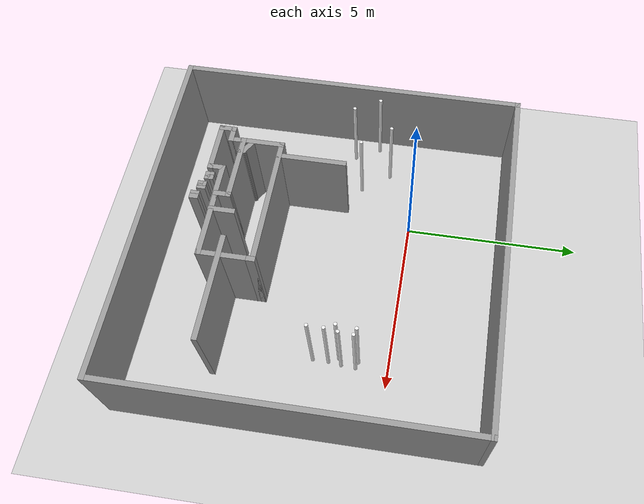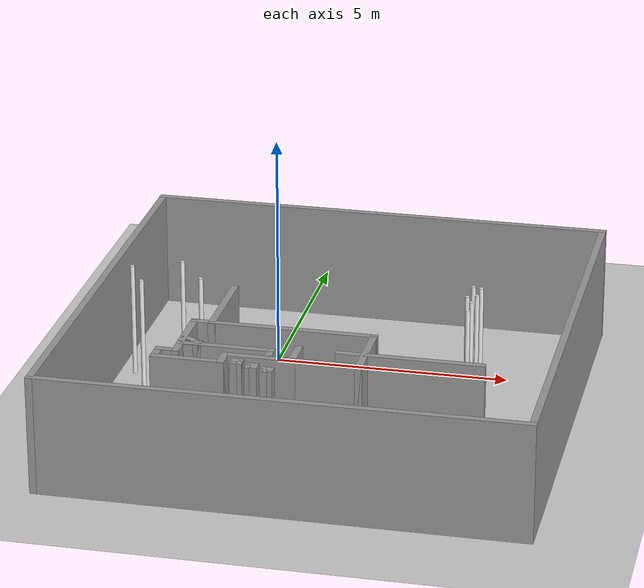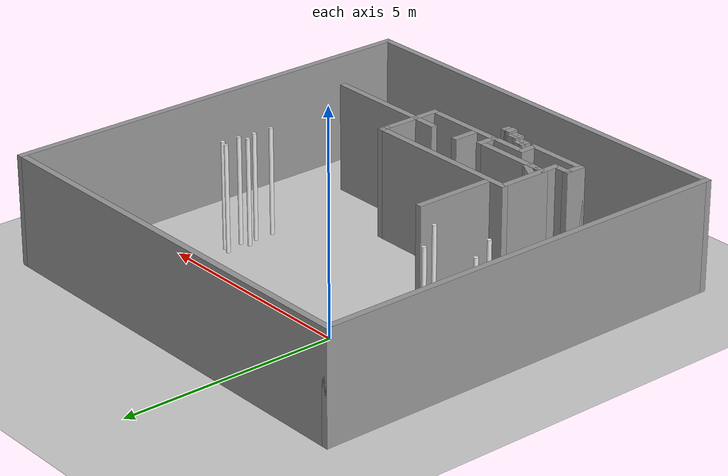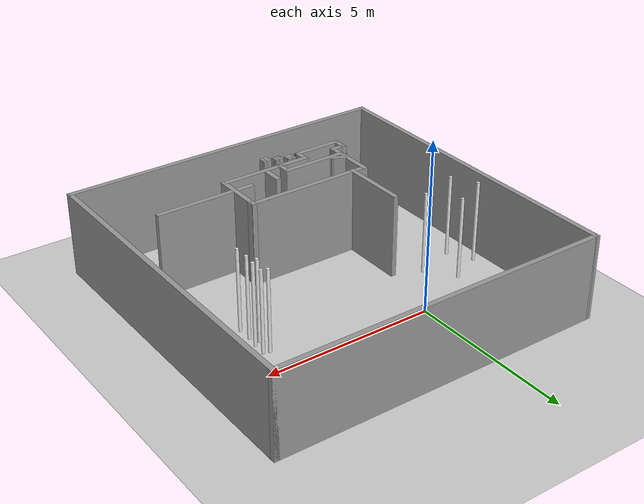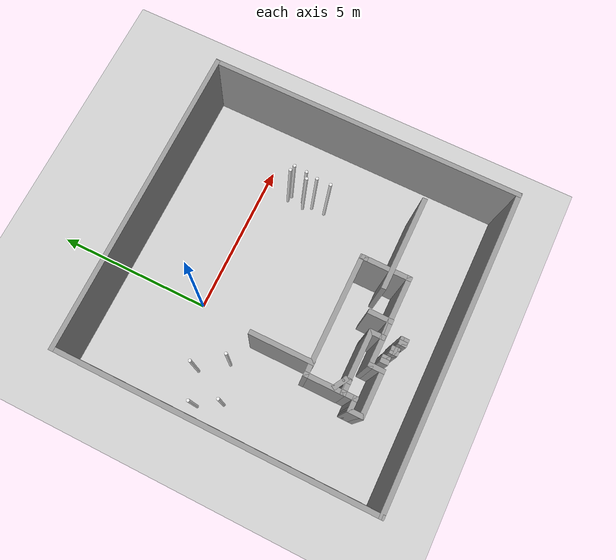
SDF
<sdf version="1.7">
 <world name="default">
  <model name="ground_plane">
   <static>1</static>
   <link name="link">
    <collision name="collision">
     <geometry><plane><normal>0 0 1</normal><size>100 100</size></plane></geometry>
     <surface><friction><ode><mu>100</mu><mu2>50</mu2></ode></friction></surface>
    </collision>
    <visual name="visual">
     <cast_shadows>0</cast_shadows>
     <geometry><plane><normal>0 0 1</normal><size>100 100</size></plane></geometry>
     <material>
      <script><uri>file://media/materials/scripts/gazebo.material</uri><name>Gazebo/Grey</name></script>
     </material>
    </visual>
   </link>
  </model>
  <model name="10mx10m">
   <pose>4.18438 -2.20916 0 0 -0 0</pose>
   <link name="Wall_0">
    <collision name="Wall_0_Collision">
     <geometry><box><size>10 0.15 2.5</size></box></geometry>
     <pose>0 0 1.25 0 -0 0</pose>
    </collision>
    <visual name="Wall_0_Visual">
     <pose>0 0 1.25 0 -0 0</pose>
     <geometry><box><size>10 0.15 2.5</size></box></geometry>
     <material>
      <script><uri>file://media/materials/scripts/gazebo.material</uri><name>Gazebo/Grey</name></script>
      <ambient>1 1 1 1</ambient>
     </material>
     <meta><layer>0</layer></meta>
    </visual>
    <pose>2.4125 -0 0 0 -0 1.5708</pose>
   </link>
   <link name="Wall_2">
    <collision name="Wall_2_Collision">
     <geometry><box><size>10 0.15 2.5</size></box></geometry>
     <pose>0 0 1.25 0 -0 0</pose>
    </collision>
    <visual name="Wall_2_Visual">
     <pose>0 0 1.25 0 -0 0</pose>
     <geometry><box><size>10 0.15 2.5</size></box></geometry>
     <material>
      <script><uri>file://media/materials/scripts/gazebo.material</uri><name>Gazebo/Grey</name></script>
      <ambient>1 1 1 1</ambient>
     </material>
     <meta><layer>0</layer></meta>
    </visual>
    <pose>-2.5125 -4.925 0 0 -0 3.14159</pose>
   </link>
   <link name="Wall_3">
    <collision name="Wall_3_Collision">
     <geometry><box><size>10 0.15 2.5</size></box></geometry>
     <pose>0 0 1.25 0 -0 0</pose>
    </collision>
    <visual name="Wall_3_Visual">
     <pose>0 0 1.25 0 -0 0</pose>
     <geometry><box><size>10 0.15 2.5</size></box></geometry>
     <material>
      <script><uri>file://media/materials/scripts/gazebo.material</uri><name>Gazebo/Grey</name></script>
      <ambient>1 1 1 1</ambient>
     </material>
     <meta><layer>0</layer></meta>
    </visual>
    <pose>-7.4375 -0 0 0 -0 1.5708</pose>
   </link>
   <link name="Wall_4">
    <collision name="Wall_4_Collision">
     <geometry><box><size>10 0.15 2.5</size></box></geometry>
     <pose>0 0 1.25 0 -0 0</pose>
    </collision>
    <visual name="Wall_4_Visual">
     <pose>0 0 1.25 0 -0 0</pose>
     <geometry><box><size>10 0.15 2.5</size></box></geometry>
     <material>
      <script><uri>file://media/materials/scripts/gazebo.material</uri><name>Gazebo/Grey</name></script>
      <ambient>1 1 1 1</ambient>
     </material>
     <meta><layer>0</layer></meta>
    </visual>
    <pose>-2.5125 4.925 0 0 -0 0</pose>
   </link>
   <static>1</static>
  </model>
  <model name="2m_wall">
   <pose>2.61075 -2.4429 0 0 -0 0</pose>
   <link name="Wall_37">
    <collision name="Wall_37_Collision">
     <geometry><box><size>2 0.15 2.5</size></box></geometry>
     <pose>0 0 1.25 0 -0 0</pose>
    </collision>
    <visual name="Wall_37_Visual">
     <pose>0 0 1.25 0 -0 0</pose>
     <geometry><box><size>2 0.15 2.5</size></box></geometry>
     <material>
      <script><uri>file://media/materials/scripts/gazebo.material</uri><name>Gazebo/Grey</name></script>
      <ambient>1 1 1 1</ambient>
     </material>
     <meta><layer>0</layer></meta>
    </visual>
    <pose>-3.0625 -0.4625 0 0 -0 -1.5708</pose>
   </link>
   <static>1</static>
  </model>
  <model name="center_wall005">
   <pose>2.40467 -3.64658 0 0 -0 0</pose>
   <link name="Wall_14">
    <collision name="Wall_14_Collision">
     <geometry><box><size>1.25 0.15 2.5</size></box></geometry>
     <pose>0 0 1.25 0 -0 0</pose>
    </collision>
    <visual name="Wall_14_Visual">
     <pose>0 0 1.25 0 -0 0</pose>
     <geometry><box><size>1.25 0.15 2.5</size></box></geometry>
     <material>
      <script><uri>file://media/materials/scripts/gazebo.material</uri><name>Gazebo/Grey</name></script>
      <ambient>1 1 1 1</ambient>
     </material>
     <meta><layer>0</layer></meta>
    </visual>
    <pose>-3.2275 -0.7225 0 0 -0 -1.5708</pose>
   </link>
   <link name="Wall_15">
    <collision name="Wall_15_Collision">
     <geometry><box><size>2 0.15 2.5</size></box></geometry>
     <pose>0 0 1.25 0 -0 0</pose>
    </collision>
    <visual name="Wall_15_Visual">
     <pose>0 0 1.25 0 -0 0</pose>
     <geometry><box><size>2 0.15 2.5</size></box></geometry>
     <material>
      <script><uri>file://media/materials/scripts/gazebo.material</uri><name>Gazebo/Grey</name></script>
      <ambient>1 1 1 1</ambient>
     </material>
     <meta><layer>0</layer></meta>
    </visual>
    <pose>-2.3025 -1.2725 0 0 -0 0</pose>
   </link>
   <link name="Wall_16">
    <collision name="Wall_16_Collision">
     <geometry><box><size>0.5 0.15 2.5</size></box></geometry>
     <pose>0 0 1.25 0 -0 0</pose>
    </collision>
    <visual name="Wall_16_Visual">
     <pose>0 0 1.25 0 -0 0</pose>
     <geometry><box><size>0.5 0.15 2.5</size></box></geometry>
     <material>
      <script><uri>file://media/materials/scripts/gazebo.material</uri><name>Gazebo/Grey</name></script>
      <ambient>1 1 1 1</ambient>
     </material>
     <meta><layer>0</layer></meta>
    </visual>
    <pose>-1.3775 -1.4475 0 0 -0 -1.5708</pose>
   </link>
   <link name="Wall_17">
    <collision name="Wall_17_Collision">
     <geometry><box><size>2 0.15 2.5</size></box></geometry>
     <pose>0 0 1.25 0 -0 0</pose>
    </collision>
    <visual name="Wall_17_Visual">
     <pose>0 0 1.25 0 -0 0</pose>
     <geometry><box><size>2 0.15 2.5</size></box></geometry>
     <material>
      <script><uri>file://media/materials/scripts/gazebo.material</uri><name>Gazebo/Grey</name></script>
      <ambient>1 1 1 1</ambient>
     </material>
     <meta><layer>0</layer></meta>
    </visual>
    <pose>-0.4525 -1.6225 0 0 -0 0</pose>
   </link>
   <link name="Wall_18">
    <collision name="Wall_18_Collision">
     <geometry><box><size>1.5 0.15 2.5</size></box></geometry>
     <pose>0 0 1.25 0 -0 0</pose>
    </collision>
    <visual name="Wall_18_Visual">
     <pose>0 0 1.25 0 -0 0</pose>
     <geometry><box><size>1.5 0.15 2.5</size></box></geometry>
     <material>
      <script><uri>file://media/materials/scripts/gazebo.material</uri><name>Gazebo/Grey</name></script>
      <ambient>1 1 1 1</ambient>
     </material>
     <meta><layer>0</layer></meta>
    </visual>
    <pose>0.4725 -0.9475 0 0 -0 1.5708</pose>
   </link>
   <link name="Wall_19">
    <collision name="Wall_19_Collision">
     <geometry><box><size>0.25 0.15 2.5</size></box></geometry>
     <pose>0 0 1.25 0 -0 0</pose>
    </collision>
    <visual name="Wall_19_Visual">
     <pose>0 0 1.25 0 -0 0</pose>
     <geometry><box><size>0.25 0.15 2.5</size></box></geometry>
     <material>
      <script><uri>file://media/materials/scripts/gazebo.material</uri><name>Gazebo/Grey</name></script>
      <ambient>1 1 1 1</ambient>
     </material>
     <meta><layer>0</layer></meta>
    </visual>
    <pose>0.4725 -0.2225 0 0 -0 1.5708</pose>
   </link>
   <link name="Wall_20">
    <collision name="Wall_20_Collision">
     <geometry><box><size>3.85 0.15 2.5</size></box></geometry>
     <pose>0 0 1.25 0 -0 0</pose>
    </collision>
    <visual name="Wall_20_Visual">
     <pose>0 0 1.25 0 -0 0</pose>
     <geometry><box><size>3.85 0.15 2.5</size></box></geometry>
     <material>
      <script><uri>file://media/materials/scripts/gazebo.material</uri><name>Gazebo/Grey</name></script>
      <ambient>1 1 1 1</ambient>
     </material>
     <meta><layer>0</layer></meta>
    </visual>
    <pose>-1.3775 -0.1725 0 0 -0 3.14159</pose>
   </link>
   <static>1</static>
  </model>
  <model name="3m_wall_clone_0">
   <pose>4.21832 -7.32224 0 0 0 -1.57</pose>
   <link name="Wall_33">
    <collision name="Wall_33_Collision">
     <geometry><box><size>3 0.15 2.5</size></box></geometry>
     <pose>0 0 1.25 0 -0 0</pose>
    </collision>
    <visual name="Wall_33_Visual">
     <pose>0 0 1.25 0 -0 0</pose>
     <geometry><box><size>3 0.15 2.5</size></box></geometry>
     <material>
      <script><uri>file://media/materials/scripts/gazebo.material</uri><name>Gazebo/Grey</name></script>
      <ambient>1 1 1 1</ambient>
     </material>
     <meta><layer>0</layer></meta>
    </visual>
    <pose>-2.5875 -0.4275 0 0 -0 -1.5708</pose>
   </link>
   <static>1</static>
  </model>
  <model name="under_left_wall001">
   <pose>0.5386 -4.0873 0 0 -0 0</pose>
   <link name="Wall_10">
    <collision name="Wall_10_Collision">
     <geometry><box><size>0.5 0.15 2.5</size></box></geometry>
     <pose>0 0 1.25 0 -0 0</pose>
    </collision>
    <visual name="Wall_10_Visual">
     <pose>0 0 1.25 0 -0 0</pose>
     <geometry><box><size>0.5 0.15 2.5</size></box></geometry>
     <material>
      <script><uri>file://media/materials/scripts/gazebo.material</uri><name>Gazebo/Grey</name></script>
      <ambient>1 1 1 1</ambient>
     </material>
     <meta><layer>0</layer></meta>
    </visual>
    <pose>-1.3575 -1.0225 0 0 -0 1.5708</pose>
   </link>
   <link name="Wall_11">
    <collision name="Wall_11_Collision">
     <geometry><box><size>0.5 0.15 2.5</size></box></geometry>
     <pose>0 0 1.25 0 -0 0</pose>
    </collision>
    <visual name="Wall_11_Visual">
     <pose>0 0 1.25 0 -0 0</pose>
     <geometry><box><size>0.5 0.15 2.5</size></box></geometry>
     <material>
      <script><uri>file://media/materials/scripts/gazebo.material</uri><name>Gazebo/Grey</name></script>
      <ambient>1 1 1 1</ambient>
     </material>
     <meta><layer>0</layer></meta>
    </visual>
    <pose>-1.1825 -0.8475 0 0 -0 0</pose>
   </link>
   <link name="Wall_12">
    <collision name="Wall_12_Collision">
     <geometry><box><size>0.25 0.15 2.5</size></box></geometry>
     <pose>0 0 1.25 0 -0 0</pose>
    </collision>
    <visual name="Wall_12_Visual">
     <pose>0 0 1.25 0 -0 0</pose>
     <geometry><box><size>0.25 0.15 2.5</size></box></geometry>
     <material>
      <script><uri>file://media/materials/scripts/gazebo.material</uri><name>Gazebo/Grey</name></script>
      <ambient>1 1 1 1</ambient>
     </material>
     <meta><layer>0</layer></meta>
    </visual>
    <pose>-1.0075 -0.7975 0 0 -0 1.5708</pose>
   </link>
   <link name="Wall_13">
    <collision name="Wall_13_Collision">
     <geometry><box><size>0.5 0.15 2.5</size></box></geometry>
     <pose>0 0 1.25 0 -0 0</pose>
    </collision>
    <visual name="Wall_13_Visual">
     <pose>0 0 1.25 0 -0 0</pose>
     <geometry><box><size>0.5 0.15 2.5</size></box></geometry>
     <material>
      <script><uri>file://media/materials/scripts/gazebo.material</uri><name>Gazebo/Grey</name></script>
      <ambient>1 1 1 1</ambient>
     </material>
     <meta><layer>0</layer></meta>
    </visual>
    <pose>-1.15905 -0.66 0 0 -0 2.61799</pose>
   </link>
   <link name="Wall_16">
    <collision name="Wall_16_Collision">
     <geometry><box><size>0.75 0.15 2.5</size></box></geometry>
     <pose>0 0 1.25 0 -0 0</pose>
    </collision>
    <visual name="Wall_16_Visual">
     <pose>0 0 1.25 0 -0 0</pose>
     <geometry><box><size>0.75 0.15 2.5</size></box></geometry>
     <material>
      <script><uri>file://media/materials/scripts/gazebo.material</uri><name>Gazebo/Grey</name></script>
      <ambient>1 1 1 1</ambient>
     </material>
     <meta><layer>0</layer></meta>
    </visual>
    <pose>0.9925 -0.8975 0 0 -0 1.5708</pose>
   </link>
   <link name="Wall_5">
    <collision name="Wall_5_Collision">
     <geometry><box><size>1.5 0.15 2.5</size></box></geometry>
     <pose>0 0 1.25 0 -0 0</pose>
    </collision>
    <visual name="Wall_5_Visual">
     <pose>0 0 1.25 0 -0 0</pose>
     <geometry><box><size>1.5 0.15 2.5</size></box></geometry>
     <material>
      <script><uri>file://media/materials/scripts/gazebo.material</uri><name>Gazebo/Grey</name></script>
      <ambient>1 1 1 1</ambient>
     </material>
     <meta><layer>0</layer></meta>
    </visual>
    <pose>0.3175 -1.1975 0 0 -0 3.14159</pose>
   </link>
   <link name="Wall_6">
    <collision name="Wall_6_Collision">
     <geometry><box><size>0.5 0.15 2.5</size></box></geometry>
     <pose>0 0 1.25 0 -0 0</pose>
    </collision>
    <visual name="Wall_6_Visual">
     <pose>0 0 1.25 0 -0 0</pose>
     <geometry><box><size>0.5 0.15 2.5</size></box></geometry>
     <material>
      <script><uri>file://media/materials/scripts/gazebo.material</uri><name>Gazebo/Grey</name></script>
      <ambient>1 1 1 1</ambient>
     </material>
     <meta><layer>0</layer></meta>
    </visual>
    <pose>-0.3575 -1.3725 0 0 -0 -1.5708</pose>
   </link>
   <link name="Wall_7">
    <collision name="Wall_7_Collision">
     <geometry><box><size>1.5 0.15 2.5</size></box></geometry>
     <pose>0 0 1.25 0 -0 0</pose>
    </collision>
    <visual name="Wall_7_Visual">
     <pose>0 0 1.25 0 -0 0</pose>
     <geometry><box><size>1.5 0.15 2.5</size></box></geometry>
     <material>
      <script><uri>file://media/materials/scripts/gazebo.material</uri><name>Gazebo/Grey</name></script>
      <ambient>1 1 1 1</ambient>
     </material>
     <meta><layer>0</layer></meta>
    </visual>
    <pose>-1.0325 -1.5475 0 0 -0 3.14159</pose>
   </link>
   <link name="Wall_8">
    <collision name="Wall_8_Collision">
     <geometry><box><size>0.5 0.15 2.5</size></box></geometry>
     <pose>0 0 1.25 0 -0 0</pose>
    </collision>
    <visual name="Wall_8_Visual">
     <pose>0 0 1.25 0 -0 0</pose>
     <geometry><box><size>0.5 0.15 2.5</size></box></geometry>
     <material>
      <script><uri>file://media/materials/scripts/gazebo.material</uri><name>Gazebo/Grey</name></script>
      <ambient>1 1 1 1</ambient>
     </material>
     <meta><layer>0</layer></meta>
    </visual>
    <pose>-1.7075 -1.3725 0 0 -0 1.5708</pose>
   </link>
   <link name="Wall_9">
    <collision name="Wall_9_Collision">
     <geometry><box><size>0.5 0.15 2.5</size></box></geometry>
     <pose>0 0 1.25 0 -0 0</pose>
    </collision>
    <visual name="Wall_9_Visual">
     <pose>0 0 1.25 0 -0 0</pose>
     <geometry><box><size>0.5 0.15 2.5</size></box></geometry>
     <material>
      <script><uri>file://media/materials/scripts/gazebo.material</uri><name>Gazebo/Grey</name></script>
      <ambient>1 1 1 1</ambient>
     </material>
     <meta><layer>0</layer></meta>
    </visual>
    <pose>-1.5325 -1.1975 0 0 -0 0</pose>
   </link>
   <static>1</static>
  </model>
  <model name="0.25m_cube">
   <pose>2.21963 -3.88995 0 0 -0 0</pose>
   <link name="Wall_18">
    <collision name="Wall_18_Collision">
     <geometry><box><size>0.25 0.15 2.5</size></box></geometry>
     <pose>0 0 1.25 0 -0 0</pose>
    </collision>
    <visual name="Wall_18_Visual">
     <pose>0 0 1.25 0 -0 0</pose>
     <geometry><box><size>0.25 0.15 2.5</size></box></geometry>
     <material>
      <script><uri>file://media/materials/scripts/gazebo.material</uri><name>Gazebo/Grey</name></script>
      <ambient>1 1 1 1</ambient>
     </material>
     <meta><layer>0</layer></meta>
    </visual>
    <pose>-1.77505 -1.68895 0 0 -0 -1.5708</pose>
   </link>
   <link name="Wall_19">
    <collision name="Wall_19_Collision">
     <geometry><box><size>0.25 0.15 2.5</size></box></geometry>
     <pose>0 0 1.25 0 -0 0</pose>
    </collision>
    <visual name="Wall_19_Visual">
     <pose>0 0 1.25 0 -0 0</pose>
     <geometry><box><size>0.25 0.15 2.5</size></box></geometry>
     <material>
      <script><uri>file://media/materials/scripts/gazebo.material</uri><name>Gazebo/Grey</name></script>
      <ambient>1 1 1 1</ambient>
     </material>
     <meta><layer>0</layer></meta>
    </visual>
    <pose>-1.72505 -1.73894 0 0 -0 0</pose>
   </link>
   <link name="Wall_20">
    <collision name="Wall_20_Collision">
     <geometry><box><size>0.25 0.15 2.5</size></box></geometry>
     <pose>0 0 1.25 0 -0 0</pose>
    </collision>
    <visual name="Wall_20_Visual">
     <pose>0 0 1.25 0 -0 0</pose>
     <geometry><box><size>0.25 0.15 2.5</size></box></geometry>
     <material>
      <script><uri>file://media/materials/scripts/gazebo.material</uri><name>Gazebo/Grey</name></script>
      <ambient>1 1 1 1</ambient>
     </material>
     <meta><layer>0</layer></meta>
    </visual>
    <pose>-1.67505 -1.68895 0 0 -0 1.5708</pose>
   </link>
   <static>1</static>
  </model>
  <model name="0.25m_cube_clone">
   <pose>2.55207 -4.02545 0 0 -0 0</pose>
   <link name="Wall_18">
    <collision name="Wall_18_Collision">
     <geometry><box><size>0.25 0.15 2.5</size></box></geometry>
     <pose>0 0 1.25 0 -0 0</pose>
    </collision>
    <visual name="Wall_18_Visual">
     <pose>0 0 1.25 0 -0 0</pose>
     <geometry><box><size>0.25 0.15 2.5</size></box></geometry>
     <material>
      <script><uri>file://media/materials/scripts/gazebo.material</uri><name>Gazebo/Grey</name></script>
      <ambient>1 1 1 1</ambient>
     </material>
     <meta><layer>0</layer></meta>
    </visual>
    <pose>-1.77505 -1.68895 0 0 -0 -1.5708</pose>
   </link>
   <link name="Wall_19">
    <collision name="Wall_19_Collision">
     <geometry><box><size>0.25 0.15 2.5</size></box></geometry>
     <pose>0 0 1.25 0 -0 0</pose>
    </collision>
    <visual name="Wall_19_Visual">
     <pose>0 0 1.25 0 -0 0</pose>
     <geometry><box><size>0.25 0.15 2.5</size></box></geometry>
     <material>
      <script><uri>file://media/materials/scripts/gazebo.material</uri><name>Gazebo/Grey</name></script>
      <ambient>1 1 1 1</ambient>
     </material>
     <meta><layer>0</layer></meta>
    </visual>
    <pose>-1.72505 -1.73894 0 0 -0 0</pose>
   </link>
   <link name="Wall_20">
    <collision name="Wall_20_Collision">
     <geometry><box><size>0.25 0.15 2.5</size></box></geometry>
     <pose>0 0 1.25 0 -0 0</pose>
    </collision>
    <visual name="Wall_20_Visual">
     <pose>0 0 1.25 0 -0 0</pose>
     <geometry><box><size>0.25 0.15 2.5</size></box></geometry>
     <material>
      <script><uri>file://media/materials/scripts/gazebo.material</uri><name>Gazebo/Grey</name></script>
      <ambient>1 1 1 1</ambient>
     </material>
     <meta><layer>0</layer></meta>
    </visual>
    <pose>-1.67505 -1.68895 0 0 -0 1.5708</pose>
   </link>
   <static>1</static>
  </model>
  <model name="0.25m_cube_clone_0">
   <pose>2.88559 -4.14481 0 0 -0 0</pose>
   <link name="Wall_18">
    <collision name="Wall_18_Collision">
     <geometry><box><size>0.25 0.15 2.5</size></box></geometry>
     <pose>0 0 1.25 0 -0 0</pose>
    </collision>
    <visual name="Wall_18_Visual">
     <pose>0 0 1.25 0 -0 0</pose>
     <geometry><box><size>0.25 0.15 2.5</size></box></geometry>
     <material>
      <script><uri>file://media/materials/scripts/gazebo.material</uri><name>Gazebo/Grey</name></script>
      <ambient>1 1 1 1</ambient>
     </material>
     <meta><layer>0</layer></meta>
    </visual>
    <pose>-1.77505 -1.68895 0 0 -0 -1.5708</pose>
   </link>
   <link name="Wall_19">
    <collision name="Wall_19_Collision">
     <geometry><box><size>0.25 0.15 2.5</size></box></geometry>
     <pose>0 0 1.25 0 -0 0</pose>
    </collision>
    <visual name="Wall_19_Visual">
     <pose>0 0 1.25 0 -0 0</pose>
     <geometry><box><size>0.25 0.15 2.5</size></box></geometry>
     <material>
      <script><uri>file://media/materials/scripts/gazebo.material</uri><name>Gazebo/Grey</name></script>
      <ambient>1 1 1 1</ambient>
     </material>
     <meta><layer>0</layer></meta>
    </visual>
    <pose>-1.72505 -1.73894 0 0 -0 0</pose>
   </link>
   <link name="Wall_20">
    <collision name="Wall_20_Collision">
     <geometry><box><size>0.25 0.15 2.5</size></box></geometry>
     <pose>0 0 1.25 0 -0 0</pose>
    </collision>
    <visual name="Wall_20_Visual">
     <pose>0 0 1.25 0 -0 0</pose>
     <geometry><box><size>0.25 0.15 2.5</size></box></geometry>
     <material>
      <script><uri>file://media/materials/scripts/gazebo.material</uri><name>Gazebo/Grey</name></script>
      <ambient>1 1 1 1</ambient>
     </material>
     <meta><layer>0</layer></meta>
    </visual>
    <pose>-1.67505 -1.68895 0 0 -0 1.5708</pose>
   </link>
   <static>1</static>
  </model>
  <model name="White_pole_clone_clone_7">
   <link name="link_0">
    <inertial>
     <mass>1</mass>
     <inertia><ixx>0.145833</ixx><ixy>0</ixy><ixz>0</ixz><iyy>0.145833</iyy><iyz>0</iyz><izz>0.125</izz></inertia>
    </inertial>
    <visual name="visual">
     <geometry><cylinder><radius>0.0478039</radius><length>2.47001</length></cylinder></geometry>
     <material>
      <lighting>1</lighting>
      <script><uri>file://media/materials/scripts/gazebo.material</uri><name>Gazebo/White</name></script>
      <shader type="vertex"><normal_map>__default__</normal_map></shader>
      <ambient>1 1 1 1</ambient>
      <diffuse>1 1 1 1</diffuse>
      <specular>0 0 0 1</specular>
      <emissive>0 0 0 1</emissive>
     </material>
    </visual>
    <collision name="collision">
     <geometry><cylinder><radius>0.047804</radius><length>2.47001</length></cylinder></geometry>
     <surface>
      <friction>
       <ode><mu>1</mu><mu2>1</mu2><fdir1>0 0 0</fdir1><slip1>0</slip1><slip2>0</slip2></ode>
       <torsional>
        <coefficient>1</coefficient>
        <patch_radius>0</patch_radius>
        <surface_radius>0</surface_radius>
        <use_patch_radius>1</use_patch_radius>
        <ode><slip>0</slip></ode>
       </torsional>
      </friction>
      <bounce><restitution_coefficient>0</restitution_coefficient><threshold>1e+06</threshold></bounce>
      <contact>
       <collide_without_contact>0</collide_without_contact>
       <collide_without_contact_bitmask>1</collide_without_contact_bitmask>
       <collide_bitmask>1</collide_bitmask>
       <ode>
        <soft_cfm>0</soft_cfm>
        <soft_erp>0.2</soft_erp>
        <kp>1e+13</kp>
        <kd>1</kd>
        <max_vel>0.01</max_vel>
        <min_depth>0</min_depth>
       </ode>
       <bullet>
        <split_impulse>1</split_impulse>
        <split_impulse_penetration_threshold>-0.01</split_impulse_penetration_threshold>
        <soft_cfm>0</soft_cfm>
        <soft_erp>0.2</soft_erp>
        <kp>1e+13</kp>
        <kd>1</kd>
       </bullet>
      </contact>
     </surface>
    </collision>
   </link>
   <static>1</static>
   <pose>4.47457 -2.09463 1.235 0 -2e-06 -5e-06</pose>
  </model>
  <model name="White_pole_clone_clone_9">
   <link name="link_0">
    <inertial>
     <mass>1</mass>
     <inertia><ixx>0.145833</ixx><ixy>0</ixy><ixz>0</ixz><iyy>0.145833</iyy><iyz>0</iyz><izz>0.125</izz></inertia>
    </inertial>
    <visual name="visual">
     <geometry><cylinder><radius>0.0478039</radius><length>2.47001</length></cylinder></geometry>
     <material>
      <lighting>1</lighting>
      <script><uri>file://media/materials/scripts/gazebo.material</uri><name>Gazebo/White</name></script>
      <shader type="vertex"><normal_map>__default__</normal_map></shader>
      <ambient>1 1 1 1</ambient>
      <diffuse>1 1 1 1</diffuse>
      <specular>0 0 0 1</specular>
      <emissive>0 0 0 1</emissive>
     </material>
    </visual>
    <collision name="collision">
     <geometry><cylinder><radius>0.047804</radius><length>2.47001</length></cylinder></geometry>
     <surface>
      <friction>
       <ode><mu>1</mu><mu2>1</mu2><fdir1>0 0 0</fdir1><slip1>0</slip1><slip2>0</slip2></ode>
       <torsional>
        <coefficient>1</coefficient>
        <patch_radius>0</patch_radius>
        <surface_radius>0</surface_radius>
        <use_patch_radius>1</use_patch_radius>
        <ode><slip>0</slip></ode>
       </torsional>
      </friction>
      <bounce><restitution_coefficient>0</restitution_coefficient><threshold>1e+06</threshold></bounce>
      <contact>
       <collide_without_contact>0</collide_without_contact>
       <collide_without_contact_bitmask>1</collide_without_contact_bitmask>
       <collide_bitmask>1</collide_bitmask>
       <ode>
        <soft_cfm>0</soft_cfm>
        <soft_erp>0.2</soft_erp>
        <kp>1e+13</kp>
        <kd>1</kd>
        <max_vel>0.01</max_vel>
        <min_depth>0</min_depth>
       </ode>
       <bullet>
        <split_impulse>1</split_impulse>
        <split_impulse_penetration_threshold>-0.01</split_impulse_penetration_threshold>
        <soft_cfm>0</soft_cfm>
        <soft_erp>0.2</soft_erp>
        <kp>1e+13</kp>
        <kd>1</kd>
       </bullet>
      </contact>
     </surface>
    </collision>
   </link>
   <static>1</static>
   <pose>4.47731 -1.65622 1.235 0 -2e-06 -5e-06</pose>
  </model>
  <model name="White_pole_clone_clone_10">
   <link name="link_0">
    <inertial>
     <mass>1</mass>
     <inertia><ixx>0.145833</ixx><ixy>0</ixy><ixz>0</ixz><iyy>0.145833</iyy><iyz>0</iyz><izz>0.125</izz></inertia>
    </inertial>
    <visual name="visual">
     <geometry><cylinder><radius>0.0478039</radius><length>2.47001</length></cylinder></geometry>
     <material>
      <lighting>1</lighting>
      <script><uri>file://media/materials/scripts/gazebo.material</uri><name>Gazebo/White</name></script>
      <shader type="vertex"><normal_map>__default__</normal_map></shader>
      <ambient>1 1 1 1</ambient>
      <diffuse>1 1 1 1</diffuse>
      <specular>0 0 0 1</specular>
      <emissive>0 0 0 1</emissive>
     </material>
    </visual>
    <collision name="collision">
     <geometry><cylinder><radius>0.047804</radius><length>2.47001</length></cylinder></geometry>
     <surface>
      <friction>
       <ode><mu>1</mu><mu2>1</mu2><fdir1>0 0 0</fdir1><slip1>0</slip1><slip2>0</slip2></ode>
       <torsional>
        <coefficient>1</coefficient>
        <patch_radius>0</patch_radius>
        <surface_radius>0</surface_radius>
        <use_patch_radius>1</use_patch_radius>
        <ode><slip>0</slip></ode>
       </torsional>
      </friction>
      <bounce><restitution_coefficient>0</restitution_coefficient><threshold>1e+06</threshold></bounce>
      <contact>
       <collide_without_contact>0</collide_without_contact>
       <collide_without_contact_bitmask>1</collide_without_contact_bitmask>
       <collide_bitmask>1</collide_bitmask>
       <ode>
        <soft_cfm>0</soft_cfm>
        <soft_erp>0.2</soft_erp>
        <kp>1e+13</kp>
        <kd>1</kd>
        <max_vel>0.01</max_vel>
        <min_depth>0</min_depth>
       </ode>
       <bullet>
        <split_impulse>1</split_impulse>
        <split_impulse_penetration_threshold>-0.01</split_impulse_penetration_threshold>
        <soft_cfm>0</soft_cfm>
        <soft_erp>0.2</soft_erp>
        <kp>1e+13</kp>
        <kd>1</kd>
       </bullet>
      </contact>
     </surface>
    </collision>
   </link>
   <static>1</static>
   <pose>4.52862 -1.29042 1.235 0 -2e-06 -5e-06</pose>
  </model>
  <model name="White_pole_clone_clone_10_clone">
   <link name="link_0">
    <inertial>
     <mass>1</mass>
     <inertia><ixx>0.145833</ixx><ixy>0</ixy><ixz>0</ixz><iyy>0.145833</iyy><iyz>0</iyz><izz>0.125</izz></inertia>
    </inertial>
    <visual name="visual">
     <geometry><cylinder><radius>0.0478039</radius><length>2.47001</length></cylinder></geometry>
     <material>
      <lighting>1</lighting>
      <script><uri>file://media/materials/scripts/gazebo.material</uri><name>Gazebo/White</name></script>
      <shader type="vertex"><normal_map>__default__</normal_map></shader>
      <ambient>1 1 1 1</ambient>
      <diffuse>1 1 1 1</diffuse>
      <specular>0 0 0 1</specular>
      <emissive>0 0 0 1</emissive>
     </material>
    </visual>
    <collision name="collision">
     <geometry><cylinder><radius>0.047804</radius><length>2.47001</length></cylinder></geometry>
     <surface>
      <friction>
       <ode><mu>1</mu><mu2>1</mu2><fdir1>0 0 0</fdir1><slip1>0</slip1><slip2>0</slip2></ode>
       <torsional>
        <coefficient>1</coefficient>
        <patch_radius>0</patch_radius>
        <surface_radius>0</surface_radius>
        <use_patch_radius>1</use_patch_radius>
        <ode><slip>0</slip></ode>
       </torsional>
      </friction>
      <bounce><restitution_coefficient>0</restitution_coefficient><threshold>1e+06</threshold></bounce>
      <contact>
       <collide_without_contact>0</collide_without_contact>
       <collide_without_contact_bitmask>1</collide_without_contact_bitmask>
       <collide_bitmask>1</collide_bitmask>
       <ode>
        <soft_cfm>0</soft_cfm>
        <soft_erp>0.2</soft_erp>
        <kp>1e+13</kp>
        <kd>1</kd>
        <max_vel>0.01</max_vel>
        <min_depth>0</min_depth>
       </ode>
       <bullet>
        <split_impulse>1</split_impulse>
        <split_impulse_penetration_threshold>-0.01</split_impulse_penetration_threshold>
        <soft_cfm>0</soft_cfm>
        <soft_erp>0.2</soft_erp>
        <kp>1e+13</kp>
        <kd>1</kd>
       </bullet>
      </contact>
     </surface>
    </collision>
   </link>
   <static>1</static>
   <pose>4.34076 -1.38196 1.235 0 -2e-06 -5e-06</pose>
  </model>
  <model name="White_pole_clone_clone_10_clone_0">
   <link name="link_0">
    <inertial>
     <mass>1</mass>
     <inertia><ixx>0.145833</ixx><ixy>0</ixy><ixz>0</ixz><iyy>0.145833</iyy><iyz>0</iyz><izz>0.125</izz></inertia>
    </inertial>
    <visual name="visual">
     <geometry><cylinder><radius>0.0478039</radius><length>2.47001</length></cylinder></geometry>
     <material>
      <lighting>1</lighting>
      <script><uri>file://media/materials/scripts/gazebo.material</uri><name>Gazebo/White</name></script>
      <shader type="vertex"><normal_map>__default__</normal_map></shader>
      <ambient>1 1 1 1</ambient>
      <diffuse>1 1 1 1</diffuse>
      <specular>0 0 0 1</specular>
      <emissive>0 0 0 1</emissive>
     </material>
    </visual>
    <collision name="collision">
     <geometry><cylinder><radius>0.047804</radius><length>2.47001</length></cylinder></geometry>
     <surface>
      <friction>
       <ode><mu>1</mu><mu2>1</mu2><fdir1>0 0 0</fdir1><slip1>0</slip1><slip2>0</slip2></ode>
       <torsional>
        <coefficient>1</coefficient>
        <patch_radius>0</patch_radius>
        <surface_radius>0</surface_radius>
        <use_patch_radius>1</use_patch_radius>
        <ode><slip>0</slip></ode>
       </torsional>
      </friction>
      <bounce><restitution_coefficient>0</restitution_coefficient><threshold>1e+06</threshold></bounce>
      <contact>
       <collide_without_contact>0</collide_without_contact>
       <collide_without_contact_bitmask>1</collide_without_contact_bitmask>
       <collide_bitmask>1</collide_bitmask>
       <ode>
        <soft_cfm>0</soft_cfm>
        <soft_erp>0.2</soft_erp>
        <kp>1e+13</kp>
        <kd>1</kd>
        <max_vel>0.01</max_vel>
        <min_depth>0</min_depth>
       </ode>
       <bullet>
        <split_impulse>1</split_impulse>
        <split_impulse_penetration_threshold>-0.01</split_impulse_penetration_threshold>
        <soft_cfm>0</soft_cfm>
        <soft_erp>0.2</soft_erp>
        <kp>1e+13</kp>
        <kd>1</kd>
       </bullet>
      </contact>
     </surface>
    </collision>
   </link>
   <static>1</static>
   <pose>4.55073 -0.888294 1.235 0 -2e-06 -5e-06</pose>
  </model>
  <model name="White_pole_clone_clone_10_clone_2">
   <link name="link_0">
    <inertial>
     <mass>1</mass>
     <inertia><ixx>0.145833</ixx><ixy>0</ixy><ixz>0</ixz><iyy>0.145833</iyy><iyz>0</iyz><izz>0.125</izz></inertia>
    </inertial>
    <visual name="visual">
     <geometry><cylinder><radius>0.0478039</radius><length>2.47001</length></cylinder></geometry>
     <material>
      <lighting>1</lighting>
      <script><uri>file://media/materials/scripts/gazebo.material</uri><name>Gazebo/White</name></script>
      <shader type="vertex"><normal_map>__default__</normal_map></shader>
      <ambient>1 1 1 1</ambient>
      <diffuse>1 1 1 1</diffuse>
      <specular>0 0 0 1</specular>
      <emissive>0 0 0 1</emissive>
     </material>
    </visual>
    <collision name="collision">
     <geometry><cylinder><radius>0.047804</radius><length>2.47001</length></cylinder></geometry>
     <surface>
      <friction>
       <ode><mu>1</mu><mu2>1</mu2><fdir1>0 0 0</fdir1><slip1>0</slip1><slip2>0</slip2></ode>
       <torsional>
        <coefficient>1</coefficient>
        <patch_radius>0</patch_radius>
        <surface_radius>0</surface_radius>
        <use_patch_radius>1</use_patch_radius>
        <ode><slip>0</slip></ode>
       </torsional>
      </friction>
      <bounce><restitution_coefficient>0</restitution_coefficient><threshold>1e+06</threshold></bounce>
      <contact>
       <collide_without_contact>0</collide_without_contact>
       <collide_without_contact_bitmask>1</collide_without_contact_bitmask>
       <collide_bitmask>1</collide_bitmask>
       <ode>
        <soft_cfm>0</soft_cfm>
        <soft_erp>0.2</soft_erp>
        <kp>1e+13</kp>
        <kd>1</kd>
        <max_vel>0.01</max_vel>
        <min_depth>0</min_depth>
       </ode>
       <bullet>
        <split_impulse>1</split_impulse>
        <split_impulse_penetration_threshold>-0.01</split_impulse_penetration_threshold>
        <soft_cfm>0</soft_cfm>
        <soft_erp>0.2</soft_erp>
        <kp>1e+13</kp>
        <kd>1</kd>
       </bullet>
      </contact>
     </surface>
    </collision>
   </link>
   <static>1</static>
   <pose>4.37692 -0.837076 1.235 0 -2e-06 -5e-06</pose>
  </model>
  <model name="White_pole_clone_clone_5_clone">
   <link name="link_0">
    <inertial>
     <mass>1</mass>
     <inertia><ixx>0.145833</ixx><ixy>0</ixy><ixz>0</ixz><iyy>0.145833</iyy><iyz>0</iyz><izz>0.125</izz></inertia>
    </inertial>
    <visual name="visual">
     <geometry><cylinder><radius>0.0478039</radius><length>2.47001</length></cylinder></geometry>
     <material>
      <lighting>1</lighting>
      <script><uri>file://media/materials/scripts/gazebo.material</uri><name>Gazebo/White</name></script>
      <shader type="vertex"><normal_map>__default__</normal_map></shader>
      <ambient>1 1 1 1</ambient>
      <diffuse>1 1 1 1</diffuse>
      <specular>0 0 0 1</specular>
      <emissive>0 0 0 1</emissive>
     </material>
    </visual>
    <collision name="collision">
     <geometry><cylinder><radius>0.047804</radius><length>2.47001</length></cylinder></geometry>
     <surface>
      <friction>
       <ode><mu>1</mu><mu2>1</mu2><fdir1>0 0 0</fdir1><slip1>0</slip1><slip2>0</slip2></ode>
       <torsional>
        <coefficient>1</coefficient>
        <patch_radius>0</patch_radius>
        <surface_radius>0</surface_radius>
        <use_patch_radius>1</use_patch_radius>
        <ode><slip>0</slip></ode>
       </torsional>
      </friction>
      <bounce><restitution_coefficient>0</restitution_coefficient><threshold>1e+06</threshold></bounce>
      <contact>
       <collide_without_contact>0</collide_without_contact>
       <collide_without_contact_bitmask>1</collide_without_contact_bitmask>
       <collide_bitmask>1</collide_bitmask>
       <ode>
        <soft_cfm>0</soft_cfm>
        <soft_erp>0.2</soft_erp>
        <kp>1e+13</kp>
        <kd>1</kd>
        <max_vel>0.01</max_vel>
        <min_depth>0</min_depth>
       </ode>
       <bullet>
        <split_impulse>1</split_impulse>
        <split_impulse_penetration_threshold>-0.01</split_impulse_penetration_threshold>
        <soft_cfm>0</soft_cfm>
        <soft_erp>0.2</soft_erp>
        <kp>1e+13</kp>
        <kd>1</kd>
       </bullet>
      </contact>
     </surface>
    </collision>
   </link>
   <static>1</static>
   <pose>-1.26905 -1.611 1.235 0 -2e-06 -5e-06</pose>
  </model>
  <model name="White_pole_clone_clone_5_clone_clone">
   <link name="link_0">
    <inertial>
     <mass>1</mass>
     <inertia><ixx>0.145833</ixx><ixy>0</ixy><ixz>0</ixz><iyy>0.145833</iyy><iyz>0</iyz><izz>0.125</izz></inertia>
    </inertial>
    <visual name="visual">
     <geometry><cylinder><radius>0.0478039</radius><length>2.47001</length></cylinder></geometry>
     <material>
      <lighting>1</lighting>
      <script><uri>file://media/materials/scripts/gazebo.material</uri><name>Gazebo/White</name></script>
      <shader type="vertex"><normal_map>__default__</normal_map></shader>
      <ambient>1 1 1 1</ambient>
      <diffuse>1 1 1 1</diffuse>
      <specular>0 0 0 1</specular>
      <emissive>0 0 0 1</emissive>
     </material>
    </visual>
    <collision name="collision">
     <geometry><cylinder><radius>0.047804</radius><length>2.47001</length></cylinder></geometry>
     <surface>
      <friction>
       <ode><mu>1</mu><mu2>1</mu2><fdir1>0 0 0</fdir1><slip1>0</slip1><slip2>0</slip2></ode>
       <torsional>
        <coefficient>1</coefficient>
        <patch_radius>0</patch_radius>
        <surface_radius>0</surface_radius>
        <use_patch_radius>1</use_patch_radius>
        <ode><slip>0</slip></ode>
       </torsional>
      </friction>
      <bounce><restitution_coefficient>0</restitution_coefficient><threshold>1e+06</threshold></bounce>
      <contact>
       <collide_without_contact>0</collide_without_contact>
       <collide_without_contact_bitmask>1</collide_without_contact_bitmask>
       <collide_bitmask>1</collide_bitmask>
       <ode>
        <soft_cfm>0</soft_cfm>
        <soft_erp>0.2</soft_erp>
        <kp>1e+13</kp>
        <kd>1</kd>
        <max_vel>0.01</max_vel>
        <min_depth>0</min_depth>
       </ode>
       <bullet>
        <split_impulse>1</split_impulse>
        <split_impulse_penetration_threshold>-0.01</split_impulse_penetration_threshold>
        <soft_cfm>0</soft_cfm>
        <soft_erp>0.2</soft_erp>
        <kp>1e+13</kp>
        <kd>1</kd>
       </bullet>
      </contact>
     </surface>
    </collision>
   </link>
   <static>1</static>
   <pose>-2.44935 -1.98025 1.235 0 -2e-06 -5e-06</pose>
  </model>
  <model name="White_pole_clone_clone_5_clone_clone_0">
   <link name="link_0">
    <inertial>
     <mass>1</mass>
     <inertia><ixx>0.145833</ixx><ixy>0</ixy><ixz>0</ixz><iyy>0.145833</iyy><iyz>0</iyz><izz>0.125</izz></inertia>
    </inertial>
    <visual name="visual">
     <geometry><cylinder><radius>0.0478039</radius><length>2.47001</length></cylinder></geometry>
     <material>
      <lighting>1</lighting>
      <script><uri>file://media/materials/scripts/gazebo.material</uri><name>Gazebo/White</name></script>
      <shader type="vertex"><normal_map>__default__</normal_map></shader>
      <ambient>1 1 1 1</ambient>
      <diffuse>1 1 1 1</diffuse>
      <specular>0 0 0 1</specular>
      <emissive>0 0 0 1</emissive>
     </material>
    </visual>
    <collision name="collision">
     <geometry><cylinder><radius>0.047804</radius><length>2.47001</length></cylinder></geometry>
     <surface>
      <friction>
       <ode><mu>1</mu><mu2>1</mu2><fdir1>0 0 0</fdir1><slip1>0</slip1><slip2>0</slip2></ode>
       <torsional>
        <coefficient>1</coefficient>
        <patch_radius>0</patch_radius>
        <surface_radius>0</surface_radius>
        <use_patch_radius>1</use_patch_radius>
        <ode><slip>0</slip></ode>
       </torsional>
      </friction>
      <bounce><restitution_coefficient>0</restitution_coefficient><threshold>1e+06</threshold></bounce>
      <contact>
       <collide_without_contact>0</collide_without_contact>
       <collide_without_contact_bitmask>1</collide_without_contact_bitmask>
       <collide_bitmask>1</collide_bitmask>
       <ode>
        <soft_cfm>0</soft_cfm>
        <soft_erp>0.2</soft_erp>
        <kp>1e+13</kp>
        <kd>1</kd>
        <max_vel>0.01</max_vel>
        <min_depth>0</min_depth>
       </ode>
       <bullet>
        <split_impulse>1</split_impulse>
        <split_impulse_penetration_threshold>-0.01</split_impulse_penetration_threshold>
        <soft_cfm>0</soft_cfm>
        <soft_erp>0.2</soft_erp>
        <kp>1e+13</kp>
        <kd>1</kd>
       </bullet>
      </contact>
     </surface>
    </collision>
   </link>
   <static>1</static>
   <pose>-2.84533 -1.27427 1.235 0 -2e-06 -5e-06</pose>
  </model>
  <model name="White_pole_clone_clone_5_clone_clone_1">
   <link name="link_0">
    <inertial>
     <mass>1</mass>
     <inertia><ixx>0.145833</ixx><ixy>0</ixy><ixz>0</ixz><iyy>0.145833</iyy><iyz>0</iyz><izz>0.125</izz></inertia>
    </inertial>
    <visual name="visual">
     <geometry><cylinder><radius>0.0478039</radius><length>2.47001</length></cylinder></geometry>
     <material>
      <lighting>1</lighting>
      <script><uri>file://media/materials/scripts/gazebo.material</uri><name>Gazebo/White</name></script>
      <shader type="vertex"><normal_map>__default__</normal_map></shader>
      <ambient>1 1 1 1</ambient>
      <diffuse>1 1 1 1</diffuse>
      <specular>0 0 0 1</specular>
      <emissive>0 0 0 1</emissive>
     </material>
    </visual>
    <collision name="collision">
     <geometry><cylinder><radius>0.047804</radius><length>2.47001</length></cylinder></geometry>
     <surface>
      <friction>
       <ode><mu>1</mu><mu2>1</mu2><fdir1>0 0 0</fdir1><slip1>0</slip1><slip2>0</slip2></ode>
       <torsional>
        <coefficient>1</coefficient>
        <patch_radius>0</patch_radius>
        <surface_radius>0</surface_radius>
        <use_patch_radius>1</use_patch_radius>
        <ode><slip>0</slip></ode>
       </torsional>
      </friction>
      <bounce><restitution_coefficient>0</restitution_coefficient><threshold>1e+06</threshold></bounce>
      <contact>
       <collide_without_contact>0</collide_without_contact>
       <collide_without_contact_bitmask>1</collide_without_contact_bitmask>
       <collide_bitmask>1</collide_bitmask>
       <ode>
        <soft_cfm>0</soft_cfm>
        <soft_erp>0.2</soft_erp>
        <kp>1e+13</kp>
        <kd>1</kd>
        <max_vel>0.01</max_vel>
        <min_depth>0</min_depth>
       </ode>
       <bullet>
        <split_impulse>1</split_impulse>
        <split_impulse_penetration_threshold>-0.01</split_impulse_penetration_threshold>
        <soft_cfm>0</soft_cfm>
        <soft_erp>0.2</soft_erp>
        <kp>1e+13</kp>
        <kd>1</kd>
       </bullet>
      </contact>
     </surface>
    </collision>
   </link>
   <static>1</static>
   <pose>-1.87692 -0.815963 1.235 0 -2e-06 -5e-06</pose>
  </model>
 </world>
</sdf>
